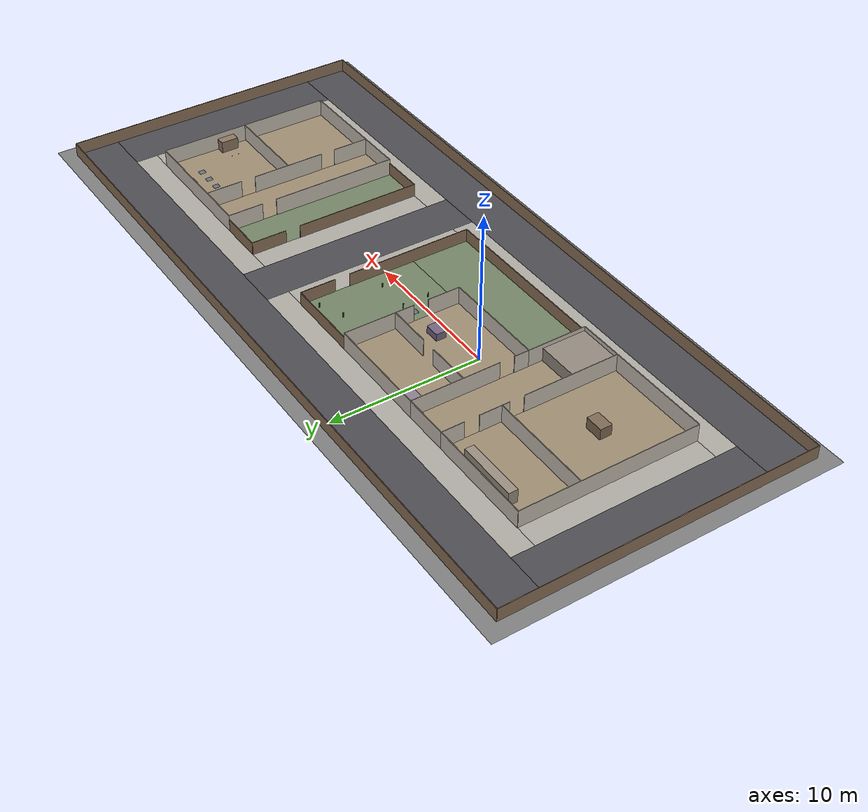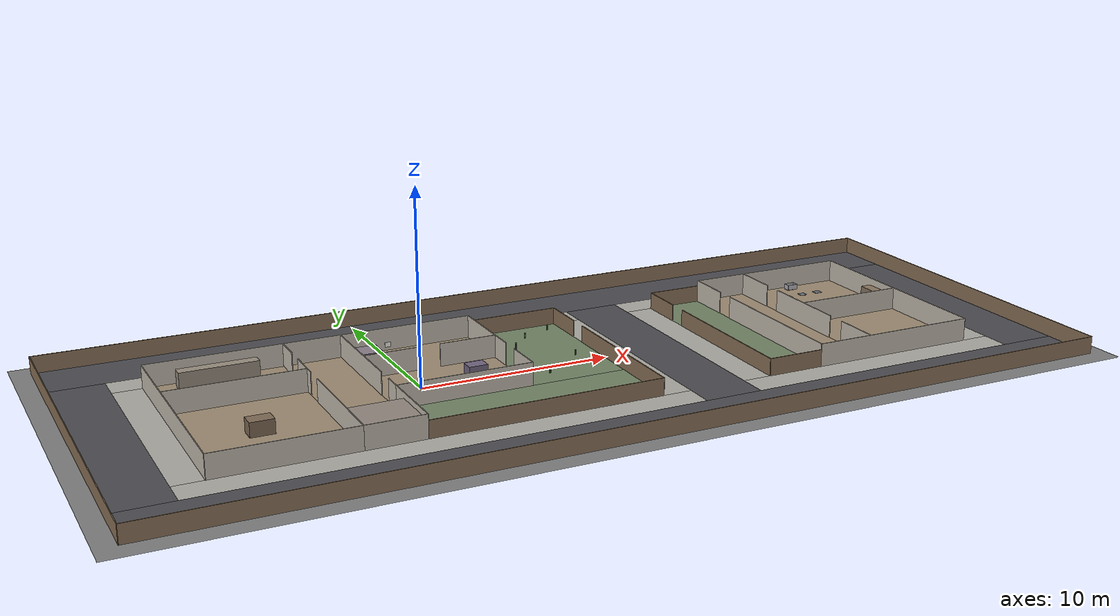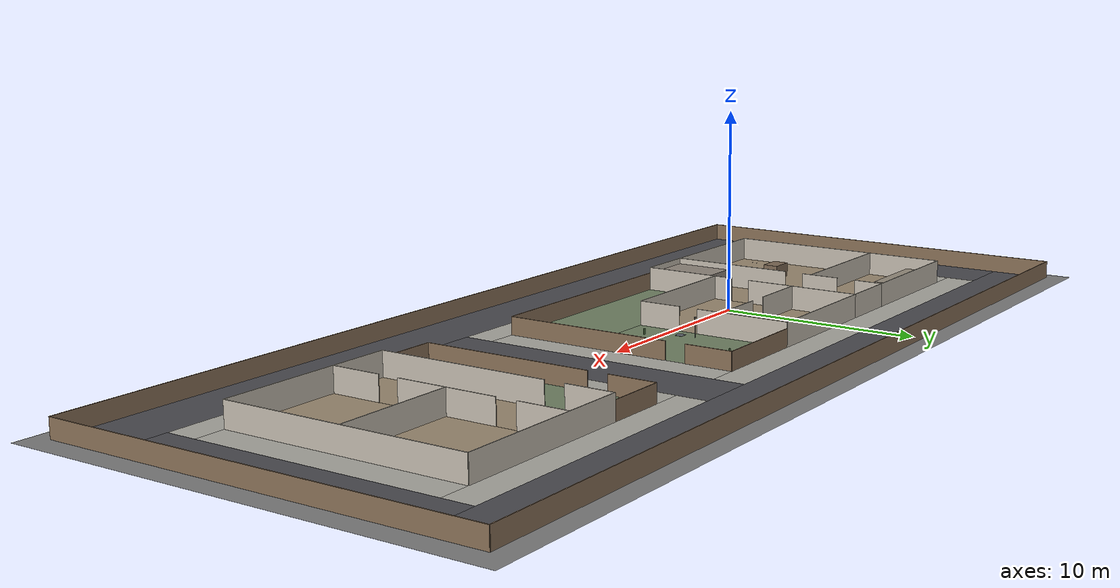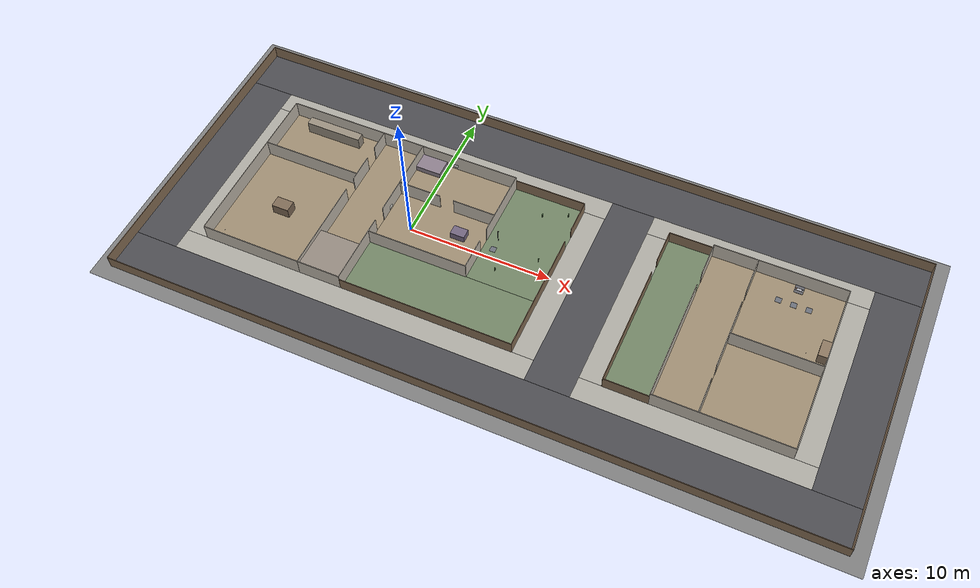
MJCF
<mujoco model="home_world">
  <option integrator="implicitfast"/>
  <visual>
    <global offwidth="1280" offheight="720"/>
    <quality offsamples="0"/>
  </visual>
  <statistic center="0.577 -1.233 0.153"
             extent="37.2"/>
  <asset>
    <texture name="tagtex20" type="cube" file="tags/tag20.png"/>
    <material name="tagmat20" texture="tagtex20" specular="0.05" shininess="0.05" reflectance="0"/>
    <texture name="tagtex21" type="cube" file="tags/tag21.png"/>
    <material name="tagmat21" texture="tagtex21" specular="0.05" shininess="0.05" reflectance="0"/>
    <texture name="tagtex22" type="cube" file="tags/tag22.png"/>
    <material name="tagmat22" texture="tagtex22" specular="0.05" shininess="0.05" reflectance="0"/>
    <texture name="tagtex23" type="cube" file="tags/tag23.png"/>
    <material name="tagmat23" texture="tagtex23" specular="0.05" shininess="0.05" reflectance="0"/>
    <texture name="tagtex24" type="cube" file="tags/tag24.png"/>
    <material name="tagmat24" texture="tagtex24" specular="0.05" shininess="0.05" reflectance="0"/>
  </asset>
  <worldbody>
    <light pos="0 0 3" dir="0 0 -1"/>
    <geom name="floor" type="plane" pos="8.0000 0.0000 0" size="25.5000 11.5000 0.1" rgba="0.5 0.5 0.5 1"/>
    <light pos="1.5 0.5 3" dir="0 0 -1"/>
    <light pos="1.5 4.5 3" dir="0 0 -1"/>
    <light pos="7.5 2.0 3" dir="0 0 -1"/>
    <light pos="-8.5000 4.0000 3" dir="0 0 -1"/>
    <light pos="-8.5000 -2.0000 3" dir="0 0 -1"/>
    <light pos="-3.5000 0.0000 3" dir="0 0 -1"/>
    <light pos="4.0000 -4.0000 3" dir="0 0 -1"/>
    <light pos="13.0000 0.0000 3" dir="0 0 -1"/>
    <light pos="20.5000 0.0000 3" dir="0 0 -1"/>
    <light pos="25.0000 3.0000 3" dir="0 0 -1"/>
    <light pos="25.0000 -3.0000 3" dir="0 0 -1"/>
    <light pos="8.0000 9.0000 3" dir="0 0 -1"/>
    <light pos="8.0000 -9.0000 3" dir="0 0 -1"/>
    <light pos="-15.0000 0.0000 3" dir="0 0 -1"/>
    <light pos="31.0000 0.0000 3" dir="0 0 -1"/>

    <body name="wall_west_0" pos="-2.0000 -1.5000 0.6000">
      <geom name="wall_west_0_geom" type="box" size="0.0200 0.5000 0.6000" rgba="0.78 0.75 0.70 1"/>
    </body>
    <body name="wall_west_1" pos="-2.0000 3.0000 0.6000">
      <geom name="wall_west_1_geom" type="box" size="0.0200 3.0000 0.6000" rgba="0.78 0.75 0.70 1"/>
    </body>
    <body name="wall_south" pos="1.5000 -2.0000 0.6000">
      <geom name="wall_south_geom" type="box" size="3.5000 0.0200 0.6000" rgba="0.78 0.75 0.70 1"/>
    </body>
    <body name="wall_north" pos="1.5000 6.0000 0.6000">
      <geom name="wall_north_geom" type="box" size="3.5000 0.0200 0.6000" rgba="0.78 0.75 0.70 1"/>
    </body>
    <body name="wall_east_0" pos="5.0000 -0.9000 0.6000">
      <geom name="wall_east_0_geom" type="box" size="0.0200 1.1000 0.6000" rgba="0.78 0.75 0.70 1"/>
    </body>
    <body name="wall_east_1" pos="5.0000 3.6000 0.6000">
      <geom name="wall_east_1_geom" type="box" size="0.0200 2.4000 0.6000" rgba="0.78 0.75 0.70 1"/>
    </body>
    <body name="wall_divider_0" pos="-0.5000 2.5000 0.6000">
      <geom name="wall_divider_0_geom" type="box" size="1.5000 0.0200 0.6000" rgba="0.78 0.75 0.70 1"/>
    </body>
    <body name="wall_divider_1" pos="3.5000 2.5000 0.6000">
      <geom name="wall_divider_1_geom" type="box" size="1.5000 0.0200 0.6000" rgba="0.78 0.75 0.70 1"/>
    </body>
    <body name="wall_wing_west" pos="-12.0000 0.0000 0.6000">
      <geom name="wall_wing_west_geom" type="box" size="0.0200 6.0000 0.6000" rgba="0.78 0.75 0.70 1"/>
    </body>
    <body name="wall_wing_north" pos="-8.5000 6.0000 0.6000">
      <geom name="wall_wing_north_geom" type="box" size="3.5000 0.0200 0.6000" rgba="0.78 0.75 0.70 1"/>
    </body>
    <body name="wall_wing_south" pos="-8.5000 -6.0000 0.6000">
      <geom name="wall_wing_south_geom" type="box" size="3.5000 0.0200 0.6000" rgba="0.78 0.75 0.70 1"/>
    </body>
    <body name="wall_wing_east_0" pos="-5.0000 -2.7500 0.6000">
      <geom name="wall_wing_east_0_geom" type="box" size="0.0200 3.2500 0.6000" rgba="0.78 0.75 0.70 1"/>
    </body>
    <body name="wall_wing_east_1" pos="-5.0000 2.5000 0.6000">
      <geom name="wall_wing_east_1_geom" type="box" size="0.0200 1.0000 0.6000" rgba="0.78 0.75 0.70 1"/>
    </body>
    <body name="wall_wing_east_2" pos="-5.0000 5.2500 0.6000">
      <geom name="wall_wing_east_2_geom" type="box" size="0.0200 0.7500 0.6000" rgba="0.78 0.75 0.70 1"/>
    </body>
    <body name="wall_kitchen_div" pos="-8.5000 2.0000 0.6000">
      <geom name="wall_kitchen_div_geom" type="box" size="3.5000 0.0200 0.6000" rgba="0.78 0.75 0.70 1"/>
    </body>
    <body name="wall_hall_north" pos="-3.5000 6.0000 0.6000">
      <geom name="wall_hall_north_geom" type="box" size="1.5000 0.0200 0.6000" rgba="0.78 0.75 0.70 1"/>
    </body>
    <body name="wall_hall_south" pos="-3.5000 -6.0000 0.6000">
      <geom name="wall_hall_south_geom" type="box" size="1.5000 0.0200 0.6000" rgba="0.78 0.75 0.70 1"/>
    </body>
    <body name="wall_hall_east" pos="-2.0000 -4.0000 0.6000">
      <geom name="wall_hall_east_geom" type="box" size="0.0200 2.0000 0.6000" rgba="0.78 0.75 0.70 1"/>
    </body>
    <body name="fence_south" pos="4.0000 -6.0000 0.4500">
      <geom name="fence_south_geom" type="box" size="6.0000 0.0200 0.4500" rgba="0.55 0.45 0.35 1"/>
    </body>
    <body name="fence_north" pos="7.5000 6.0000 0.4500">
      <geom name="fence_north_geom" type="box" size="2.5000 0.0200 0.4500" rgba="0.55 0.45 0.35 1"/>
    </body>
    <body name="fence_east_0" pos="10.0000 -1.7000 0.4500">
      <geom name="fence_east_0_geom" type="box" size="0.0200 4.3000 0.4500" rgba="0.55 0.45 0.35 1"/>
    </body>
    <body name="fence_east_1" pos="10.0000 4.8000 0.4500">
      <geom name="fence_east_1_geom" type="box" size="0.0200 1.2000 0.4500" rgba="0.55 0.45 0.35 1"/>
    </body>
    <body name="fence_2_west_0" pos="16.0000 -1.7000 0.4500">
      <geom name="fence_2_west_0_geom" type="box" size="0.0200 4.3000 0.4500" rgba="0.55 0.45 0.35 1"/>
    </body>
    <body name="fence_2_west_1" pos="16.0000 4.8000 0.4500">
      <geom name="fence_2_west_1_geom" type="box" size="0.0200 1.2000 0.4500" rgba="0.55 0.45 0.35 1"/>
    </body>
    <body name="fence_2_north" pos="17.5000 6.0000 0.4500">
      <geom name="fence_2_north_geom" type="box" size="1.5000 0.0200 0.4500" rgba="0.55 0.45 0.35 1"/>
    </body>
    <body name="fence_2_south" pos="17.5000 -6.0000 0.4500">
      <geom name="fence_2_south_geom" type="box" size="1.5000 0.0200 0.4500" rgba="0.55 0.45 0.35 1"/>
    </body>
    <body name="wall_2_west_0" pos="19.0000 -1.7000 0.6000">
      <geom name="wall_2_west_0_geom" type="box" size="0.0200 4.3000 0.6000" rgba="0.78 0.75 0.70 1"/>
    </body>
    <body name="wall_2_west_1" pos="19.0000 4.8000 0.6000">
      <geom name="wall_2_west_1_geom" type="box" size="0.0200 1.2000 0.6000" rgba="0.78 0.75 0.70 1"/>
    </body>
    <body name="wall_2_north" pos="23.5000 6.0000 0.6000">
      <geom name="wall_2_north_geom" type="box" size="4.5000 0.0200 0.6000" rgba="0.78 0.75 0.70 1"/>
    </body>
    <body name="wall_2_south" pos="23.5000 -6.0000 0.6000">
      <geom name="wall_2_south_geom" type="box" size="4.5000 0.0200 0.6000" rgba="0.78 0.75 0.70 1"/>
    </body>
    <body name="wall_2_east" pos="28.0000 0.0000 0.6000">
      <geom name="wall_2_east_geom" type="box" size="0.0200 6.0000 0.6000" rgba="0.78 0.75 0.70 1"/>
    </body>
    <body name="wall_lobby_east_0" pos="22.0000 -4.7500 0.6000">
      <geom name="wall_lobby_east_0_geom" type="box" size="0.0200 1.2500 0.6000" rgba="0.78 0.75 0.70 1"/>
    </body>
    <body name="wall_lobby_east_1" pos="22.0000 0.0000 0.6000">
      <geom name="wall_lobby_east_1_geom" type="box" size="0.0200 2.5000 0.6000" rgba="0.78 0.75 0.70 1"/>
    </body>
    <body name="wall_lobby_east_2" pos="22.0000 4.7500 0.6000">
      <geom name="wall_lobby_east_2_geom" type="box" size="0.0200 1.2500 0.6000" rgba="0.78 0.75 0.70 1"/>
    </body>
    <body name="wall_lab_div" pos="25.0000 0.0000 0.6000">
      <geom name="wall_lab_div_geom" type="box" size="3.0000 0.0200 0.6000" rgba="0.78 0.75 0.70 1"/>
    </body>
    <body name="fence_loop_west" pos="-16.5000 0.0000 0.4500">
      <geom name="fence_loop_west_geom" type="box" size="0.0200 10.5000 0.4500" rgba="0.55 0.45 0.35 1"/>
    </body>
    <body name="fence_loop_east" pos="32.5000 0.0000 0.4500">
      <geom name="fence_loop_east_geom" type="box" size="0.0200 10.5000 0.4500" rgba="0.55 0.45 0.35 1"/>
    </body>
    <body name="fence_loop_north" pos="8.0000 10.5000 0.4500">
      <geom name="fence_loop_north_geom" type="box" size="24.5000 0.0200 0.4500" rgba="0.55 0.45 0.35 1"/>
    </body>
    <body name="fence_loop_south" pos="8.0000 -10.5000 0.4500">
      <geom name="fence_loop_south_geom" type="box" size="24.5000 0.0200 0.4500" rgba="0.55 0.45 0.35 1"/>
    </body>
    <body name="home_floor" pos="1.5000 2.0000 0.0010">
      <geom name="home_floor_geom" type="box" size="3.5000 4.0000 0.0010" rgba="0.62 0.55 0.45 1" contype="0" conaffinity="0"/>
    </body>
    <body name="garden_ground" pos="7.5000 2.0000 0.0010">
      <geom name="garden_ground_geom" type="box" size="2.5000 4.0000 0.0010" rgba="0.45 0.52 0.40 1" contype="0" conaffinity="0"/>
    </body>
    <body name="kitchen_floor" pos="-8.5000 4.0000 0.0010">
      <geom name="kitchen_floor_geom" type="box" size="3.5000 2.0000 0.0010" rgba="0.62 0.55 0.45 1" contype="0" conaffinity="0"/>
    </body>
    <body name="workshop_floor" pos="-8.5000 -2.0000 0.0010">
      <geom name="workshop_floor_geom" type="box" size="3.5000 4.0000 0.0010" rgba="0.62 0.55 0.45 1" contype="0" conaffinity="0"/>
    </body>
    <body name="hall_floor" pos="-3.5000 0.0000 0.0010">
      <geom name="hall_floor_geom" type="box" size="1.5000 6.0000 0.0010" rgba="0.62 0.55 0.45 1" contype="0" conaffinity="0"/>
    </body>
    <body name="lobby_floor" pos="20.5000 0.0000 0.0010">
      <geom name="lobby_floor_geom" type="box" size="1.5000 6.0000 0.0010" rgba="0.62 0.55 0.45 1" contype="0" conaffinity="0"/>
    </body>
    <body name="lab_floor" pos="25.0000 3.0000 0.0010">
      <geom name="lab_floor_geom" type="box" size="3.0000 3.0000 0.0010" rgba="0.62 0.55 0.45 1" contype="0" conaffinity="0"/>
    </body>
    <body name="store_floor" pos="25.0000 -3.0000 0.0010">
      <geom name="store_floor_geom" type="box" size="3.0000 3.0000 0.0010" rgba="0.62 0.55 0.45 1" contype="0" conaffinity="0"/>
    </body>
    <body name="garden_south_ground" pos="4.0000 -4.0000 0.0010">
      <geom name="garden_south_ground_geom" type="box" size="6.0000 2.0000 0.0010" rgba="0.45 0.52 0.40 1" contype="0" conaffinity="0"/>
    </body>
    <body name="sidewalk_ground" pos="10.7500 0.0000 0.0010">
      <geom name="sidewalk_ground_geom" type="box" size="0.7500 6.0000 0.0010" rgba="0.68 0.67 0.64 1" contype="0" conaffinity="0"/>
    </body>
    <body name="street_ground" pos="13.0000 0.0000 0.0010">
      <geom name="street_ground_geom" type="box" size="1.5000 7.5000 0.0010" rgba="0.30 0.30 0.32 1" contype="0" conaffinity="0"/>
    </body>
    <body name="sidewalk_2_ground" pos="15.2500 0.0000 0.0010">
      <geom name="sidewalk_2_ground_geom" type="box" size="0.7500 6.0000 0.0010" rgba="0.68 0.67 0.64 1" contype="0" conaffinity="0"/>
    </body>
    <body name="garden_2_ground" pos="17.5000 0.0000 0.0010">
      <geom name="garden_2_ground_geom" type="box" size="1.5000 6.0000 0.0010" rgba="0.45 0.52 0.40 1" contype="0" conaffinity="0"/>
    </body>
    <body name="sidewalk_north_ground" pos="-1.0000 6.7500 0.0010">
      <geom name="sidewalk_north_ground_geom" type="box" size="12.5000 0.7500 0.0010" rgba="0.68 0.67 0.64 1" contype="0" conaffinity="0"/>
    </body>
    <body name="sidewalk_2_north_ground" pos="22.0000 6.7500 0.0010">
      <geom name="sidewalk_2_north_ground_geom" type="box" size="7.5000 0.7500 0.0010" rgba="0.68 0.67 0.64 1" contype="0" conaffinity="0"/>
    </body>
    <body name="sidewalk_south_ground" pos="-1.0000 -6.7500 0.0010">
      <geom name="sidewalk_south_ground_geom" type="box" size="12.5000 0.7500 0.0010" rgba="0.68 0.67 0.64 1" contype="0" conaffinity="0"/>
    </body>
    <body name="sidewalk_2_south_ground" pos="22.0000 -6.7500 0.0010">
      <geom name="sidewalk_2_south_ground_geom" type="box" size="7.5000 0.7500 0.0010" rgba="0.68 0.67 0.64 1" contype="0" conaffinity="0"/>
    </body>
    <body name="sidewalk_west_ground" pos="-12.7500 0.0000 0.0010">
      <geom name="sidewalk_west_ground_geom" type="box" size="0.7500 6.0000 0.0010" rgba="0.68 0.67 0.64 1" contype="0" conaffinity="0"/>
    </body>
    <body name="sidewalk_east_ground" pos="28.7500 0.0000 0.0010">
      <geom name="sidewalk_east_ground_geom" type="box" size="0.7500 6.0000 0.0010" rgba="0.68 0.67 0.64 1" contype="0" conaffinity="0"/>
    </body>
    <body name="street_north_ground" pos="8.0000 9.0000 0.0010">
      <geom name="street_north_ground_geom" type="box" size="24.5000 1.5000 0.0010" rgba="0.30 0.30 0.32 1" contype="0" conaffinity="0"/>
    </body>
    <body name="street_south_ground" pos="8.0000 -9.0000 0.0010">
      <geom name="street_south_ground_geom" type="box" size="24.5000 1.5000 0.0010" rgba="0.30 0.30 0.32 1" contype="0" conaffinity="0"/>
    </body>
    <body name="street_west_ground" pos="-15.0000 0.0000 0.0010">
      <geom name="street_west_ground_geom" type="box" size="1.5000 7.5000 0.0010" rgba="0.30 0.30 0.32 1" contype="0" conaffinity="0"/>
    </body>
    <body name="street_east_ground" pos="31.0000 0.0000 0.0010">
      <geom name="street_east_ground_geom" type="box" size="1.5000 7.5000 0.0010" rgba="0.30 0.30 0.32 1" contype="0" conaffinity="0"/>
    </body>
    <body name="whiteboard_a" pos="-1.9700 1.0000 0.3000">
      <geom name="board" type="box" size="0.0100 0.1600 0.1300" rgba="0.95 0.95 0.93 1" friction="0.25" priority="1"/>
    </body>
    <body name="whiteboard_b" pos="0.5000 5.9700 0.3000">
      <geom name="board_b" type="box" size="0.1600 0.0100 0.1300" rgba="0.95 0.95 0.93 1" friction="0.25" priority="1"/>
    </body>
    <body name="plant_0" pos="6.5000 -0.8000 0.15">
      <geom name="plant_0_geom" type="cylinder" size="0.04 0.15" rgba="0.35 0.50 0.30 1" contype="0" conaffinity="0"/>
    </body>
    <body name="plant_1" pos="8.8000 1.0000 0.15">
      <geom name="plant_1_geom" type="cylinder" size="0.04 0.15" rgba="0.35 0.50 0.30 1" contype="0" conaffinity="0"/>
    </body>
    <body name="plant_2" pos="7.6000 4.5000 0.15">
      <geom name="plant_2_geom" type="cylinder" size="0.04 0.15" rgba="0.35 0.50 0.30 1" contype="0" conaffinity="0"/>
    </body>
    <body name="plant_3" pos="9.2000 5.2000 0.15">
      <geom name="plant_3_geom" type="cylinder" size="0.04 0.15" rgba="0.35 0.50 0.30 1" contype="0" conaffinity="0"/>
    </body>

    <!-- Pressure plate: a sprung pad on a slide joint. The JOINT is the
         sensor; the pad is just what the wheel touches. -->
    <body name="garden_plate" pos="5.7000 0.7000 0.0160">
      <joint name="garden_plate_joint" type="slide" axis="0 0 1"
             range="-0.0100 0" stiffness="1200.0"
             damping="12.0" armature="1e-5"/>
      <geom name="garden_plate_pad" type="box"
            size="0.2000 0.2000 0.0050"
            mass="0.15" rgba="0.42 0.44 0.48 1"/>
    </body>
    <body name="garden_light" pos="5.7000 1.5000 0">
      <geom name="garden_light_pole" type="cylinder"
            size="0.0200 0.4500"
            pos="0 0 0.4500" rgba="0.30 0.31 0.33 1"/>
      <geom name="garden_light_bulb" type="sphere" size="0.0500"
            pos="0 0 0.9500" contype="0" conaffinity="0"
            rgba="0.35 0.34 0.3 1.0"/>
    </body>

    <!-- The cage: a tray and four wall slabs in ONE body (a hint is per
         body); the website draws the slabs as bars. Solid and mapped. -->
    <body name="lab_cage" pos="25.0000 5.5800 0">
      <geom name="lab_cage_tray" type="box"
            size="0.3000 0.2000 0.0100"
            pos="0 0 0.0100" rgba="0.72 0.72 0.75 1"/>
      <geom name="lab_cage_wall_w" type="box" size="0.0050 0.2000 0.1500"
            pos="-0.2950 0 0.1500" rgba="0.72 0.72 0.75 1"/>
      <geom name="lab_cage_wall_e" type="box" size="0.0050 0.2000 0.1500"
            pos="0.2950 0 0.1500" rgba="0.72 0.72 0.75 1"/>
      <geom name="lab_cage_wall_s" type="box" size="0.3000 0.0050 0.1500"
            pos="0 -0.1950 0.1500" rgba="0.72 0.72 0.75 1"/>
      <geom name="lab_cage_wall_n" type="box" size="0.3000 0.0050 0.1500"
            pos="0 0.1950 0.1500" rgba="0.72 0.72 0.75 1"/>
    </body>
    <!-- Inside: the bowl, the wheel (standing, axis along y) and the hide
         box. Static and unhinted; the poses the mouse's states stand at. -->
    <body name="lab_bowl" pos="25.2000 5.4800 0">
      <geom name="lab_bowl_geom" type="cylinder"
            size="0.0300 0.0120"
            pos="0 0 0.0320" rgba="0.85 0.80 0.60 1"/>
    </body>
    <body name="lab_wheel" pos="25.2000 5.6800 0">
      <geom name="lab_wheel_geom" type="cylinder"
            size="0.0600 0.0080" quat="0.7071068 0.7071068 0 0"
            pos="0 0 0.0800" rgba="0.60 0.62 0.66 1"/>
    </body>
    <body name="lab_hide" pos="24.8000 5.6800 0">
      <geom name="lab_hide_geom" type="box"
            size="0.0500 0.0400 0.0300"
            pos="0 0 0.0500" rgba="0.50 0.35 0.25 1"/>
    </body>
    <!-- The mouse: a MOCAP body, so its pose is an input the activity
         re-writes (ActivityPattern.md 3.4). Rests in its corner. -->
    <body name="lab_mouse" mocap="true"
          pos="24.8000 5.4800 0.0350">
      <geom name="lab_mouse_body" type="capsule"
            size="0.0150 0.0200" quat="0.7071068 0 0.7071068 0"
            rgba="0.55 0.48 0.42 1"/>
    </body>
    <!-- Pressure plate: a sprung pad on a slide joint. The JOINT is the
         sensor; the pad is just what the wheel touches. -->
    <body name="lab_shock_plate" pos="24.0000 4.3800 0.0160">
      <joint name="lab_shock_plate_joint" type="slide" axis="0 0 1"
             range="-0.0100 0" stiffness="1200.0"
             damping="12.0" armature="1e-5"/>
      <geom name="lab_shock_plate_pad" type="box"
            size="0.2000 0.2000 0.0050"
            mass="0.15" rgba="0.42 0.44 0.48 1"/>
    </body>
    <!-- Pressure plate: a sprung pad on a slide joint. The JOINT is the
         sensor; the pad is just what the wheel touches. -->
    <body name="lab_feed_plate" pos="25.0000 4.3800 0.0160">
      <joint name="lab_feed_plate_joint" type="slide" axis="0 0 1"
             range="-0.0100 0" stiffness="1200.0"
             damping="12.0" armature="1e-5"/>
      <geom name="lab_feed_plate_pad" type="box"
            size="0.2000 0.2000 0.0050"
            mass="0.15" rgba="0.42 0.44 0.48 1"/>
    </body>
    <!-- Pressure plate: a sprung pad on a slide joint. The JOINT is the
         sensor; the pad is just what the wheel touches. -->
    <body name="lab_toy_plate" pos="26.0000 4.3800 0.0160">
      <joint name="lab_toy_plate_joint" type="slide" axis="0 0 1"
             range="-0.0100 0" stiffness="1200.0"
             damping="12.0" armature="1e-5"/>
      <geom name="lab_toy_plate_pad" type="box"
            size="0.2000 0.2000 0.0050"
            mass="0.15" rgba="0.42 0.44 0.48 1"/>
    </body>
    <body name="lab_bench" pos="27.6800 1.5000 0.4000">
      <geom name="lab_bench_geom" type="box" size="0.3000 0.6000 0.4000" rgba="0.55 0.47 0.38 1"/>
    </body>
    <body name="mass_known" pos="26.6800 1.2500 0.0130">
      <freejoint/>
      <geom name="mass_known_box" type="box" size="0.013 0.013 0.013" mass="0.1" friction="1.2 0.005 0.0001" solimp="0.99 0.999 0.0001 0.9 2.0" material="tagmat23"/>
    </body>
    <body name="mass_unknown" pos="26.6800 1.7500 0.0130">
      <freejoint/>
      <geom name="mass_unknown_box" type="box" size="0.013 0.013 0.013" mass="0.15" friction="1.2 0.005 0.0001" solimp="0.99 0.999 0.0001 0.9 2.0" material="tagmat24"/>
    </body>
    <body name="furniture_couch" pos="3.2000 0.8000 0.2500">
      <geom name="furniture_couch_geom" type="box" size="0.5000 0.3500 0.2500" rgba="0.45 0.40 0.50 1"/>
    </body>
    <body name="furniture_bed" pos="-1.0700 5.3700 0.2000">
      <geom name="furniture_bed_geom" type="box" size="0.9000 0.6000 0.2000" rgba="0.55 0.50 0.55 1"/>
    </body>
    <body name="furniture_counter" pos="-8.5000 5.2000 0.4500">
      <geom name="furniture_counter_geom" type="box" size="2.0000 0.3000 0.4500" rgba="0.60 0.56 0.50 1"/>
    </body>
    <body name="furniture_table" pos="-8.5000 -2.0000 0.3700">
      <geom name="furniture_table_geom" type="box" size="0.6000 0.4000 0.3700" rgba="0.50 0.42 0.34 1"/>
    </body>
    <body name="stairs" pos="-3.5000 -4.5000 0.4500">
      <geom name="stairs_geom" type="box" size="1.5000 1.5000 0.4500" rgba="0.58 0.54 0.50 1"/>
    </body>
    <body name="block_0" pos="-11.2800 -5.0000 0.0130">
      <freejoint/>
      <geom name="block_0_box" type="box" size="0.013 0.013 0.013" mass="0.06" friction="1.2 0.005 0.0001" solimp="0.99 0.999 0.0001 0.9 2.0" material="tagmat20"/>
    </body>
    <body name="block_1" pos="-11.2800 -4.7500 0.0130">
      <freejoint/>
      <geom name="block_1_box" type="box" size="0.013 0.013 0.013" mass="0.06" friction="1.2 0.005 0.0001" solimp="0.99 0.999 0.0001 0.9 2.0" material="tagmat21"/>
    </body>
    <body name="block_2" pos="-11.2800 -4.5000 0.0130">
      <freejoint/>
      <geom name="block_2_box" type="box" size="0.013 0.013 0.013" mass="0.06" friction="1.2 0.005 0.0001" solimp="0.99 0.999 0.0001 0.9 2.0" material="tagmat22"/>
    </body>
  </worldbody>
  <sensor>
    <jointpos name="garden_plate_pos" joint="garden_plate_joint"/>
    <jointpos name="lab_shock_plate_pos" joint="lab_shock_plate_joint"/>
    <jointpos name="lab_feed_plate_pos" joint="lab_feed_plate_joint"/>
    <jointpos name="lab_toy_plate_pos" joint="lab_toy_plate_joint"/>
  </sensor>
</mujoco>
